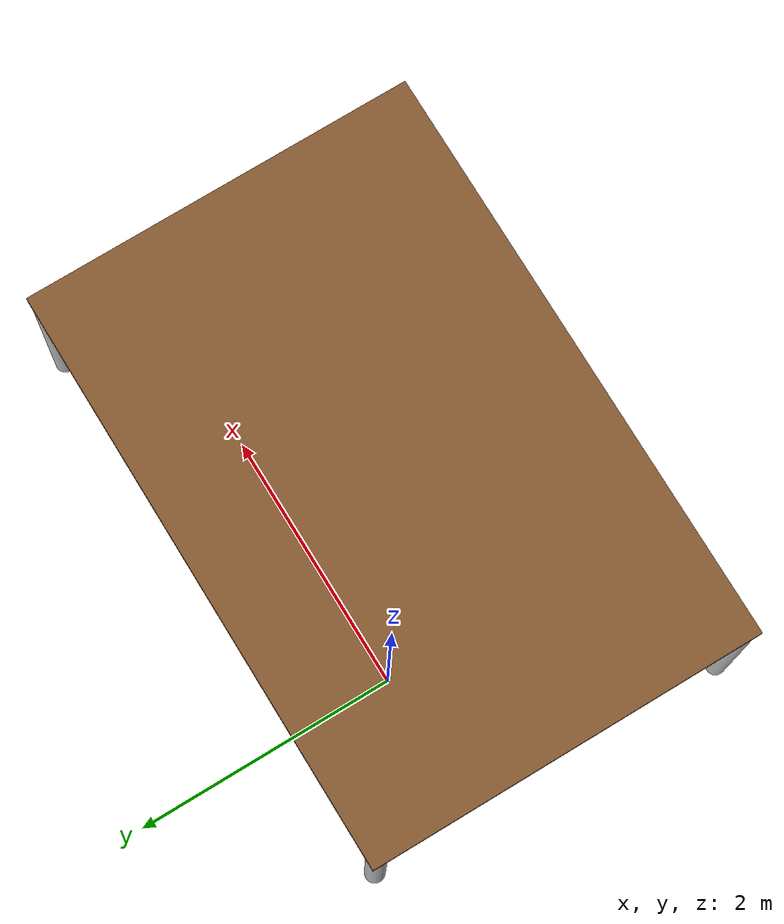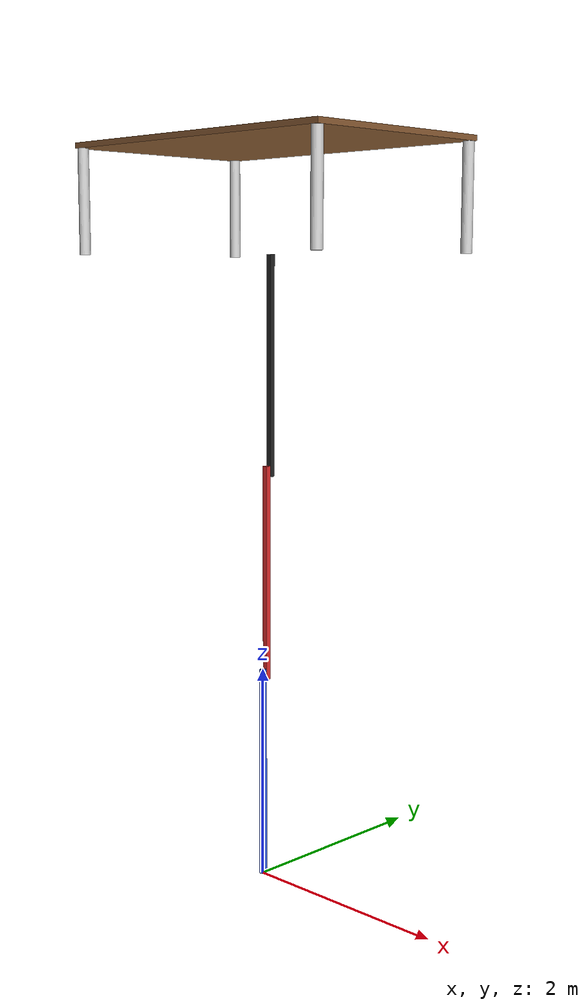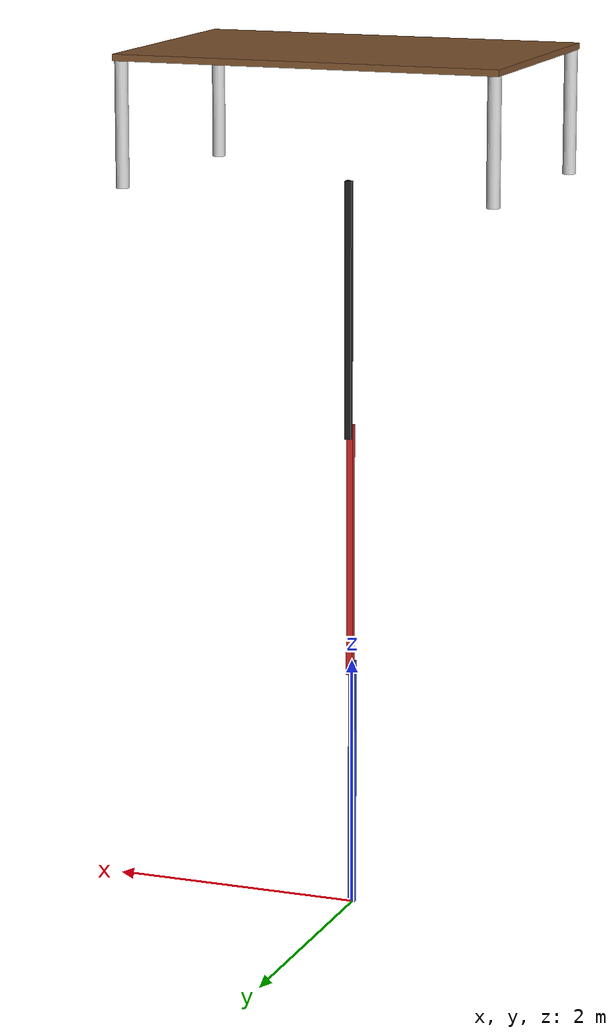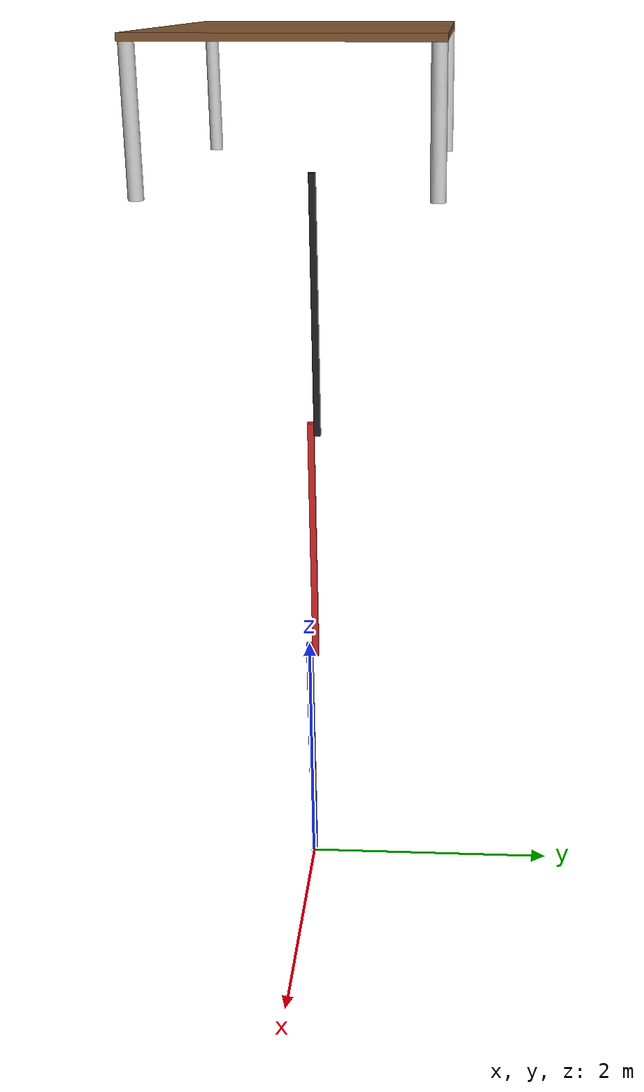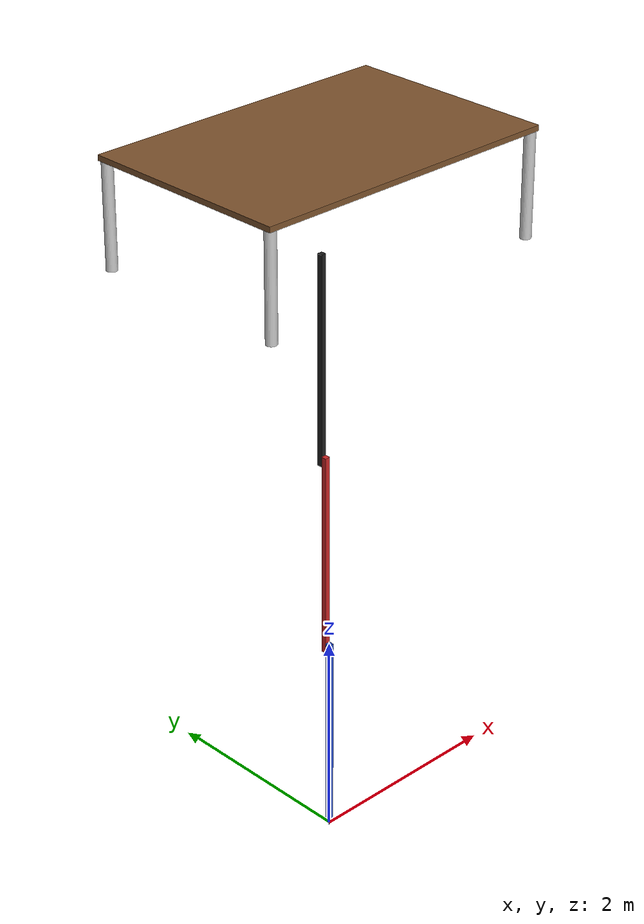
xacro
<?xml version="1.0" encoding="UTF-8"?>
<robot xmlns:xacro="http://wiki.ros.org/xacro" name="table">

    <xacro:include filename="materials.xacro" />
    <xacro:include filename="table_macro.xacro" />
    <xacro:include filename="rrbot_macro.xacro" />

    <link name="world" />

    <xacro:rrbot prefix="rrbot_" parent="world">
        <origin xyz="0 0 0" rpy="0 0 0" />
    </xacro:rrbot>

    <xacro:table prefix="table_" parent="rrbot_tool0">
        <origin xyz="0 0 0" rpy="${2 * pi} ${pi} 0" />
    </xacro:table>

</robot>

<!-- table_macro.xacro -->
<robot xmlns:xacro="http://www.ros.org/wiki/xacro">

  <xacro:macro name="table" params="prefix parent *origin">

    <!-- Constants for robot dimensions -->
    <xacro:property name="table_length" value="3" /> <!-- base (x) of top -->
    <xacro:property name="table_width" value="2" /> <!-- width (y) of top  -->
    <xacro:property name="table_height" value="1" /> <!-- height (z) of top -->
    <xacro:property name="table_thickness" value=".05" /> <!-- height (z) of top -->
    <xacro:property name="leg_length" value="${table_height - table_thickness}" /> <!-- height leg -->
    <xacro:property name="leg_radius" value="0.05" /> <!-- radius of leg -->

  <!-- joint from "world" to "top"-->
  <joint name="${prefix}base_joint" type="fixed">
    <origin rpy="0 0 0" xyz="0 0 ${table_height}" />
    <parent link="${parent}" />
    <child link="${prefix}top" />
  </joint>

  <!-- Top Link -->
  <link name="${prefix}top">
    <visual>
      <origin rpy="0 0 0" xyz="0 0 ${-table_thickness/2}" />
      <geometry>
        <box size="${table_length} ${table_width} ${table_thickness}" />
      </geometry>
      <material name="brown" />
    </visual>
  </link>

  <!-- joint from "top" to "Leg1"-->
  <joint name="${prefix}leg1_joint" type="fixed">
    <origin rpy="0 0 0" xyz="${(table_length /2) - leg_radius} ${(table_width / 2) - leg_radius} 0" />
    <parent link="${prefix}top" />
    <child link="${prefix}leg1" />
  </joint>

  <!-- Leg1 Link -->
  <link name="${prefix}leg1">
    <visual>
      <origin rpy="0 0 0" xyz="0 0 ${-(table_height + table_thickness) / 2}" />
      <geometry>
        <cylinder radius="${leg_radius}" length="${leg_length}" />
      </geometry>
      <material name="light_grey" />
    </visual>
  </link>

  <!--joint from "top" to "Leg2"-->
  <joint name="${prefix}leg2_joint" type="fixed">
    <origin rpy="0 0 0" xyz="-${(table_length /2) - leg_radius}  ${(table_width / 2) - leg_radius} 0" />
    <parent link="${prefix}top" />
    <child link="${prefix}leg_link_2" />
  </joint>

  <!-- Leg2 Link -->
  <link name="${prefix}leg_link_2">
    <visual>
      <origin rpy="0 0 0" xyz="0 0 ${-(table_height + table_thickness) / 2}" />
      <geometry>
        <cylinder radius="${leg_radius}" length="${leg_length}" />
      </geometry>
      <material name="light_grey" />
    </visual>
  </link>

  <!-- joint from "top" to "leg3"-->
  <joint name="${prefix}leg3_joint" type="fixed">
    <origin rpy="0 0 0" xyz="${(table_length / 2) - leg_radius} -${(table_width / 2) - leg_radius} 0" />
    <parent link="${prefix}top" />
    <child link="${prefix}leg_link_3" />
  </joint>

  <!-- Leg3 Link -->
  <link name="${prefix}leg_link_3">
    <visual>
      <origin rpy="0 0 0" xyz="0 0 -${(table_height + table_thickness) / 2}" />
      <geometry>
        <cylinder radius="${leg_radius}" length="${leg_length}" />
      </geometry>
      <material name="light_grey" />
    </visual>
  </link>

  <!-- joint from "top" to "leg4"-->
  <joint name="${prefix}leg4_joint" type="fixed">
    <origin rpy="0 0 0" xyz="-${(table_length /2) - leg_radius} -${(table_width / 2) - leg_radius} 0" />
    <parent link="${prefix}top" />
    <child link="${prefix}leg_link_4" />
  </joint>

  <!-- Leg4 Link -->
  <link name="${prefix}leg_link_4">
    <visual>
      <origin rpy="0 0 0" xyz="0 0 -${(table_height + table_thickness) / 2}" />
      <geometry>
        <cylinder radius="${leg_radius}" length="${leg_length}" />
      </geometry>
      <material name="light_grey" />
    </visual>
  </link>

  </xacro:macro>

</robot>

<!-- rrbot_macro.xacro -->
<robot xmlns:xacro="http://www.ros.org/wiki/xacro">

  <xacro:macro name="rrbot" params="prefix parent *origin">

    <!-- Constants for robot dimensions -->
    <xacro:property name="width" value="0.05" /> <!-- Square dimensions (widthxwidth) of beams -->
    <xacro:property name="height0" value="2" /> <!-- base_link -->
    <xacro:property name="height1" value="2" /> <!-- link1 -->
    <xacro:property name="height2" value="2" /> <!-- link2 -->
    <xacro:property name="axel_offset" value="0.05" /> <!-- Space between top of beam and each joint -->

    <joint name="${prefix}base_joint" type="fixed">
      <xacro:insert_block name="origin" />
      <parent link="${parent}" />
      <child link="${prefix}base_link" />
    </joint>

    <!-- Base Link -->
    <link name="${prefix}base_link">
      <visual>
        <origin xyz="0 0 ${height0/2}" rpy="0 0 0" />
        <geometry>
          <box size="${width} ${width} ${height0}" />
        </geometry>
        <material name="blue" />
      </visual>
    </link>

    <joint name="${prefix}joint1" type="continuous">
      <parent link="${prefix}base_link" />
      <child link="${prefix}link1" />
      <origin xyz="0 ${width} ${height0 - axel_offset}" rpy="0 0 0" />
      <axis xyz="0 1 0" />
    </joint>

    <!-- Middle Link -->
    <link name="${prefix}link1">
      <visual>
        <origin xyz="0 0 ${height1/2 - axel_offset}" rpy="0 0 0" />
        <geometry>
          <box size="${width} ${width} ${height1}" />
        </geometry>
        <material name="red" />
      </visual>
    </link>

    <joint name="${prefix}joint2" type="continuous">
      <parent link="${prefix}link1" />
      <child link="${prefix}link2" />
      <origin xyz="0 ${width} ${height1 - axel_offset*2}" rpy="0 0 0" />
      <axis xyz="0 1 0" />
    </joint>

    <!-- Top Link -->
    <link name="${prefix}link2">
      <visual>
        <origin xyz="0 0 ${height2/2 - axel_offset}" rpy="0 0 0" />
        <geometry>
          <box size="${width} ${width} ${height2}" />
        </geometry>
        <material name="black" />
      </visual>
    </link>

    <joint name="${prefix}tool_joint" type="fixed">
      <origin xyz="0 0 ${height2-axel_offset}" rpy="0 0 0" />
      <parent link="${prefix}link2" />
      <child link="${prefix}tool0" />
    </joint>

    <!-- Tool Link -->
    <link name="${prefix}tool0"/>

  </xacro:macro>

</robot>
